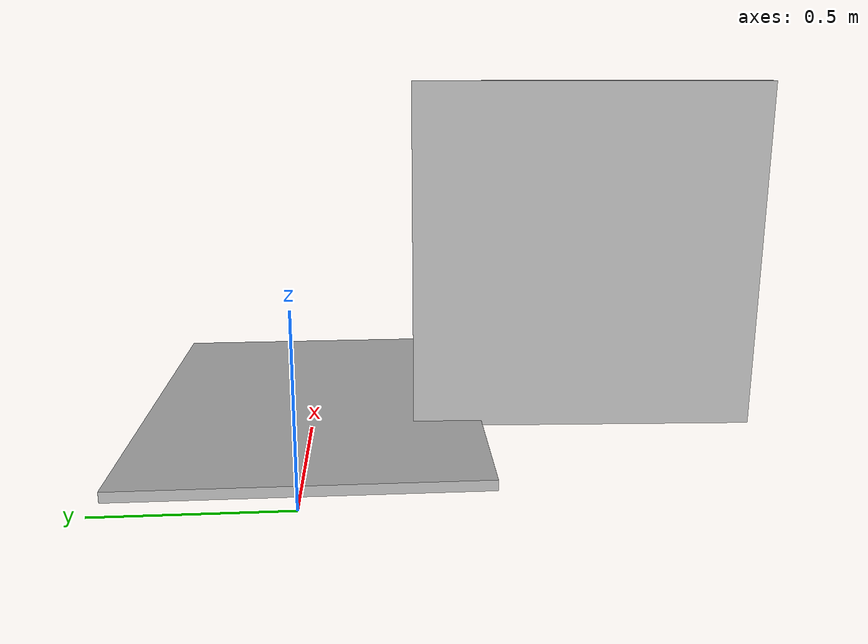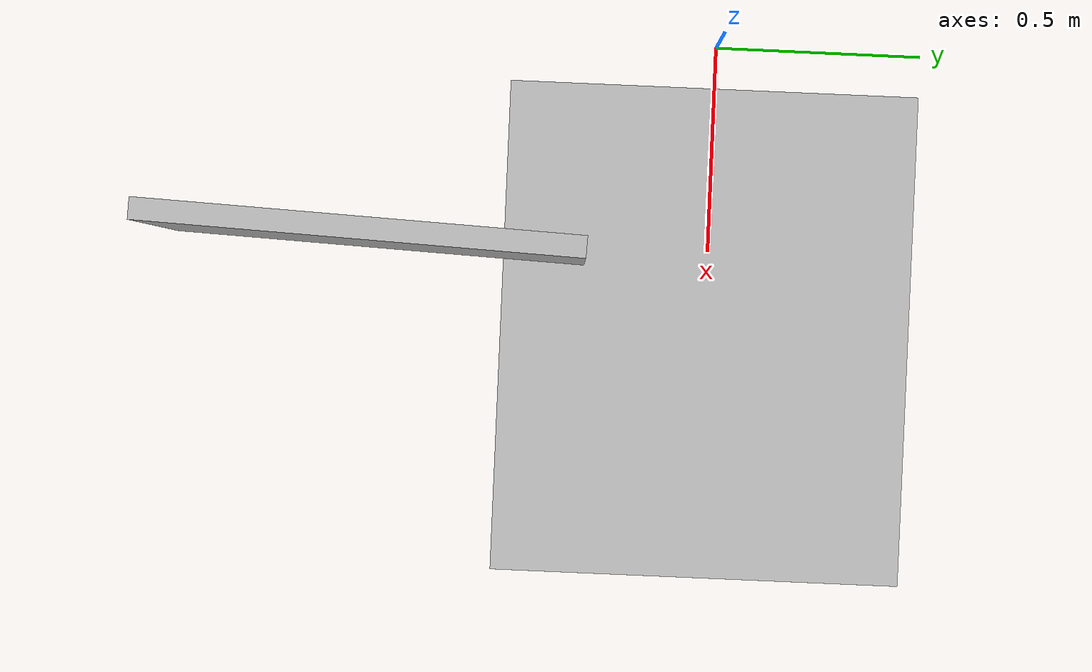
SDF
<?xml version="1.0" ?>
<sdf version="1.4">
  <!-- We use a custom world for the panda + softhand. -->
  <!-- One can change this world to his needs or use another one. -->

  <world name="default">

	<!-- box (like a robot base) -->

	<!-- box (like a table) -->
    <model name="table">
			<pose> 0.7 0 0 0 0 0</pose>
			<static>true</static>
			<link name='linkTable'>
				<pose>0 0 0 0 0 0</pose>

				<collision name="my_collisionTable">
		 			<pose>0 0 0 0 0 0</pose>
					<geometry>
		        <box>
		          <size>1.2 1 0.03</size>
		        </box>
		      </geometry>
	      </collision>

				<visual name="my_visualTable">
					<geometry>
		        <box>
					<size>1.2 1 0.03</size>
		        </box>
		      </geometry>
	      </visual>

				<self_collide>0</self_collide>
				<gravity>1</gravity>
			</link>
    </model>

<!-- box (like a wall on the right of the robot) -->
    <model name="wall_right">

			<pose>0.5 -0.8 0.5 0 0 3.1 </pose>
			<static>true</static>
			<link name='linkWallRight'>
				<pose>0 0 0 0 0 0</pose>

				<collision name="my_collisionWallRight">
		 			<pose>0 0 0 0 0 0</pose>
					<geometry>
		        <box>
		          <size>0.05 1.2 1</size>
		        </box>
		      </geometry>
	      </collision>

				<visual name="my_visualWallRight">
					<geometry>
		        <box>
					<size>0.05 1 1</size>
		        </box>
		      </geometry>
	      </visual>

				<self_collide>0</self_collide>
				<gravity>1</gravity>
			</link>
    </model>

	<!-- box (like a roof) -->

	<!-- box (like a wall behind) -->

	<!-- box (like a wall near the camera) -->

	<!-- box (like a wall near the control pc) -->

	<!-- box (like a container for placing) -->

  </world>

</sdf>
